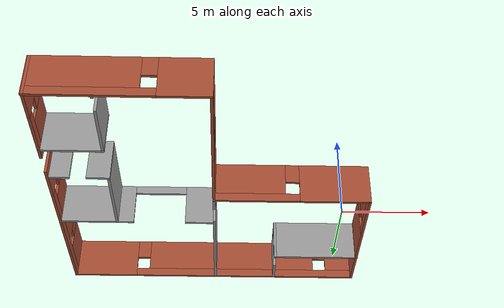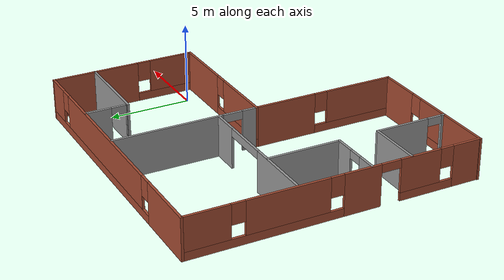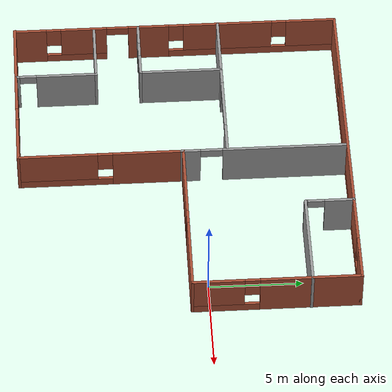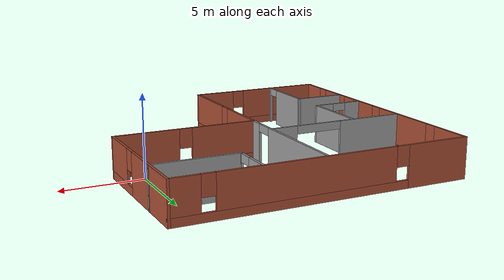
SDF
<?xml version='1.0'?>
<sdf version='1.6'>
  <model name='mybuilding'>
    <pose frame=''>-7.42419 -0.943879 0 0 -0 0</pose>
    <link name='Wall_10'>
      <pose frame=''>8.92888 4.425 0 0 0 -1.5708</pose>
      <visual name='Wall_10_Visual_0'>
        <pose frame=''>-1.80671 0 1.25 0 -0 0</pose>
        <geometry>
          <box>
            <size>5.38659 0.15 2.5</size>
          </box>
        </geometry>
        <material>
          <script>
            <uri>file://media/materials/scripts/gazebo.material</uri>
            <name>Gazebo/Bricks</name>
          </script>
          <ambient>1 1 1 1</ambient>
        </material>
        <meta>
          <layer>0</layer>
        </meta>
      </visual>
      <collision name='Wall_10_Collision_0'>
        <geometry>
          <box>
            <size>5.38659 0.15 2.5</size>
          </box>
        </geometry>
        <pose frame=''>-1.80671 0 1.25 0 -0 0</pose>
      </collision>
      <visual name='Wall_10_Visual_1'>
        <pose frame=''>2.69329 0 0.25 0 -0 0</pose>
        <geometry>
          <box>
            <size>3.61341 0.15 0.5</size>
          </box>
        </geometry>
        <material>
          <script>
            <uri>file://media/materials/scripts/gazebo.material</uri>
            <name>Gazebo/Bricks</name>
          </script>
          <ambient>1 1 1 1</ambient>
        </material>
        <meta>
          <layer>0</layer>
        </meta>
      </visual>
      <collision name='Wall_10_Collision_1'>
        <geometry>
          <box>
            <size>3.61341 0.15 0.5</size>
          </box>
        </geometry>
        <pose frame=''>2.69329 0 0.25 0 -0 0</pose>
      </collision>
      <visual name='Wall_10_Visual_2'>
        <pose frame=''>3.09329 0 1.5 0 -0 0</pose>
        <geometry>
          <box>
            <size>2.81341 0.15 2</size>
          </box>
        </geometry>
        <material>
          <script>
            <uri>file://media/materials/scripts/gazebo.material</uri>
            <name>Gazebo/Bricks</name>
          </script>
          <ambient>1 1 1 1</ambient>
        </material>
        <meta>
          <layer>0</layer>
        </meta>
      </visual>
      <collision name='Wall_10_Collision_2'>
        <geometry>
          <box>
            <size>2.81341 0.15 2</size>
          </box>
        </geometry>
        <pose frame=''>3.09329 0 1.5 0 -0 0</pose>
      </collision>
      <visual name='Wall_10_Visual_3'>
        <pose frame=''>1.28659 0 1.9 0 -0 0</pose>
        <geometry>
          <box>
            <size>0.8 0.15 1.2</size>
          </box>
        </geometry>
        <material>
          <script>
            <uri>file://media/materials/scripts/gazebo.material</uri>
            <name>Gazebo/Bricks</name>
          </script>
          <ambient>1 1 1 1</ambient>
        </material>
        <meta>
          <layer>0</layer>
        </meta>
      </visual>
      <collision name='Wall_10_Collision_3'>
        <geometry>
          <box>
            <size>0.8 0.15 1.2</size>
          </box>
        </geometry>
        <pose frame=''>1.28659 0 1.9 0 -0 0</pose>
      </collision>
    </link>
    <link name='Wall_11'>
      <pose frame=''>4.50388 0 0 0 -0 3.14159</pose>
      <visual name='Wall_11_Visual_0'>
        <pose frame=''>-2.47309 0 1.25 0 -0 0</pose>
        <geometry>
          <box>
            <size>4.05382 0.15 2.5</size>
          </box>
        </geometry>
        <material>
          <script>
            <uri>file://media/materials/scripts/gazebo.material</uri>
            <name>Gazebo/Bricks</name>
          </script>
          <ambient>1 1 1 1</ambient>
        </material>
        <meta>
          <layer>0</layer>
        </meta>
      </visual>
      <collision name='Wall_11_Collision_0'>
        <geometry>
          <box>
            <size>4.05382 0.15 2.5</size>
          </box>
        </geometry>
        <pose frame=''>-2.47309 0 1.25 0 -0 0</pose>
      </collision>
      <visual name='Wall_11_Visual_1'>
        <pose frame=''>2.02691 0 0.25 0 -0 0</pose>
        <geometry>
          <box>
            <size>4.94618 0.15 0.5</size>
          </box>
        </geometry>
        <material>
          <script>
            <uri>file://media/materials/scripts/gazebo.material</uri>
            <name>Gazebo/Bricks</name>
          </script>
          <ambient>1 1 1 1</ambient>
        </material>
        <meta>
          <layer>0</layer>
        </meta>
      </visual>
      <collision name='Wall_11_Collision_1'>
        <geometry>
          <box>
            <size>4.94618 0.15 0.5</size>
          </box>
        </geometry>
        <pose frame=''>2.02691 0 0.25 0 -0 0</pose>
      </collision>
      <visual name='Wall_11_Visual_2'>
        <pose frame=''>2.42691 0 1.5 0 -0 0</pose>
        <geometry>
          <box>
            <size>4.14618 0.15 2</size>
          </box>
        </geometry>
        <material>
          <script>
            <uri>file://media/materials/scripts/gazebo.material</uri>
            <name>Gazebo/Bricks</name>
          </script>
          <ambient>1 1 1 1</ambient>
        </material>
        <meta>
          <layer>0</layer>
        </meta>
      </visual>
      <collision name='Wall_11_Collision_2'>
        <geometry>
          <box>
            <size>4.14618 0.15 2</size>
          </box>
        </geometry>
        <pose frame=''>2.42691 0 1.5 0 -0 0</pose>
      </collision>
      <visual name='Wall_11_Visual_3'>
        <pose frame=''>-0.046178 0 1.9 0 -0 0</pose>
        <geometry>
          <box>
            <size>0.8 0.15 1.2</size>
          </box>
        </geometry>
        <material>
          <script>
            <uri>file://media/materials/scripts/gazebo.material</uri>
            <name>Gazebo/Bricks</name>
          </script>
          <ambient>1 1 1 1</ambient>
        </material>
        <meta>
          <layer>0</layer>
        </meta>
      </visual>
      <collision name='Wall_11_Collision_3'>
        <geometry>
          <box>
            <size>0.8 0.15 1.2</size>
          </box>
        </geometry>
        <pose frame=''>-0.046178 0 1.9 0 -0 0</pose>
      </collision>
    </link>
    <link name='Wall_12'>
      <pose frame=''>0.078877 -4.425 0 0 0 -1.5708</pose>
      <visual name='Wall_12_Visual_0'>
        <pose frame=''>-2.56537 0 1.25 0 -0 0</pose>
        <geometry>
          <box>
            <size>3.86926 0.15 2.5</size>
          </box>
        </geometry>
        <material>
          <script>
            <uri>file://media/materials/scripts/gazebo.material</uri>
            <name>Gazebo/Bricks</name>
          </script>
          <ambient>1 1 1 1</ambient>
        </material>
        <meta>
          <layer>0</layer>
        </meta>
      </visual>
      <collision name='Wall_12_Collision_0'>
        <geometry>
          <box>
            <size>3.86926 0.15 2.5</size>
          </box>
        </geometry>
        <pose frame=''>-2.56537 0 1.25 0 -0 0</pose>
      </collision>
      <visual name='Wall_12_Visual_1'>
        <pose frame=''>1.93463 0 0.25 0 -0 0</pose>
        <geometry>
          <box>
            <size>5.13074 0.15 0.5</size>
          </box>
        </geometry>
        <material>
          <script>
            <uri>file://media/materials/scripts/gazebo.material</uri>
            <name>Gazebo/Bricks</name>
          </script>
          <ambient>1 1 1 1</ambient>
        </material>
        <meta>
          <layer>0</layer>
        </meta>
      </visual>
      <collision name='Wall_12_Collision_1'>
        <geometry>
          <box>
            <size>5.13074 0.15 0.5</size>
          </box>
        </geometry>
        <pose frame=''>1.93463 0 0.25 0 -0 0</pose>
      </collision>
      <visual name='Wall_12_Visual_2'>
        <pose frame=''>2.33463 0 1.5 0 -0 0</pose>
        <geometry>
          <box>
            <size>4.33074 0.15 2</size>
          </box>
        </geometry>
        <material>
          <script>
            <uri>file://media/materials/scripts/gazebo.material</uri>
            <name>Gazebo/Bricks</name>
          </script>
          <ambient>1 1 1 1</ambient>
        </material>
        <meta>
          <layer>0</layer>
        </meta>
      </visual>
      <collision name='Wall_12_Collision_2'>
        <geometry>
          <box>
            <size>4.33074 0.15 2</size>
          </box>
        </geometry>
        <pose frame=''>2.33463 0 1.5 0 -0 0</pose>
      </collision>
      <visual name='Wall_12_Visual_3'>
        <pose frame=''>-0.230744 0 1.9 0 -0 0</pose>
        <geometry>
          <box>
            <size>0.8 0.15 1.2</size>
          </box>
        </geometry>
        <material>
          <script>
            <uri>file://media/materials/scripts/gazebo.material</uri>
            <name>Gazebo/Bricks</name>
          </script>
          <ambient>1 1 1 1</ambient>
        </material>
        <meta>
          <layer>0</layer>
        </meta>
      </visual>
      <collision name='Wall_12_Collision_3'>
        <geometry>
          <box>
            <size>0.8 0.15 1.2</size>
          </box>
        </geometry>
        <pose frame=''>-0.230744 0 1.9 0 -0 0</pose>
      </collision>
    </link>
    <link name='Wall_13'>
      <pose frame=''>-4.43781 -8.85 0 0 -0 3.14159</pose>
      <visual name='Wall_13_Visual_0'>
        <pose frame=''>-3.22777 0 1.25 0 -0 0</pose>
        <geometry>
          <box>
            <size>2.72783 0.15 2.5</size>
          </box>
        </geometry>
        <material>
          <script>
            <uri>file://media/materials/scripts/gazebo.material</uri>
            <name>Gazebo/Bricks</name>
          </script>
          <ambient>1 1 1 1</ambient>
        </material>
        <meta>
          <layer>0</layer>
        </meta>
      </visual>
      <collision name='Wall_13_Collision_0'>
        <geometry>
          <box>
            <size>2.72783 0.15 2.5</size>
          </box>
        </geometry>
        <pose frame=''>-3.22777 0 1.25 0 -0 0</pose>
      </collision>
      <visual name='Wall_13_Visual_1'>
        <pose frame=''>1.36392 0 0.25 0 -0 0</pose>
        <geometry>
          <box>
            <size>6.45555 0.15 0.5</size>
          </box>
        </geometry>
        <material>
          <script>
            <uri>file://media/materials/scripts/gazebo.material</uri>
            <name>Gazebo/Bricks</name>
          </script>
          <ambient>1 1 1 1</ambient>
        </material>
        <meta>
          <layer>0</layer>
        </meta>
      </visual>
      <collision name='Wall_13_Collision_1'>
        <geometry>
          <box>
            <size>6.45555 0.15 0.5</size>
          </box>
        </geometry>
        <pose frame=''>1.36392 0 0.25 0 -0 0</pose>
      </collision>
      <visual name='Wall_13_Visual_2'>
        <pose frame=''>1.76392 0 1.5 0 -0 0</pose>
        <geometry>
          <box>
            <size>5.65555 0.15 2</size>
          </box>
        </geometry>
        <material>
          <script>
            <uri>file://media/materials/scripts/gazebo.material</uri>
            <name>Gazebo/Bricks</name>
          </script>
          <ambient>1 1 1 1</ambient>
        </material>
        <meta>
          <layer>0</layer>
        </meta>
      </visual>
      <collision name='Wall_13_Collision_2'>
        <geometry>
          <box>
            <size>5.65555 0.15 2</size>
          </box>
        </geometry>
        <pose frame=''>1.76392 0 1.5 0 -0 0</pose>
      </collision>
      <visual name='Wall_13_Visual_3'>
        <pose frame=''>-1.46386 0 1.9 0 -0 0</pose>
        <geometry>
          <box>
            <size>0.8 0.15 1.2</size>
          </box>
        </geometry>
        <material>
          <script>
            <uri>file://media/materials/scripts/gazebo.material</uri>
            <name>Gazebo/Bricks</name>
          </script>
          <ambient>1 1 1 1</ambient>
        </material>
        <meta>
          <layer>0</layer>
        </meta>
      </visual>
      <collision name='Wall_13_Collision_3'>
        <geometry>
          <box>
            <size>0.8 0.15 1.2</size>
          </box>
        </geometry>
        <pose frame=''>-1.46386 0 1.9 0 -0 0</pose>
      </collision>
    </link>
    <link name='Wall_14'>
      <pose frame=''>-8.91783 -0.05 0 0 -0 1.5708</pose>
      <visual name='Wall_14_Visual_0'>
        <pose frame=''>-7.96278 0 1.25 0 -0 0</pose>
        <geometry>
          <box>
            <size>1.82444 0.15 2.5</size>
          </box>
        </geometry>
        <material>
          <script>
            <uri>file://media/materials/scripts/gazebo.material</uri>
            <name>Gazebo/Bricks</name>
          </script>
          <ambient>1 1 1 1</ambient>
        </material>
        <meta>
          <layer>0</layer>
        </meta>
      </visual>
      <collision name='Wall_14_Collision_0'>
        <geometry>
          <box>
            <size>1.82444 0.15 2.5</size>
          </box>
        </geometry>
        <pose frame=''>-7.96278 0 1.25 0 -0 0</pose>
      </collision>
      <visual name='Wall_14_Visual_1'>
        <pose frame=''>-1.40133 0 1.25 0 -0 0</pose>
        <geometry>
          <box>
            <size>2.24751 0.15 2.5</size>
          </box>
        </geometry>
        <material>
          <script>
            <uri>file://media/materials/scripts/gazebo.material</uri>
            <name>Gazebo/Bricks</name>
          </script>
          <ambient>1 1 1 1</ambient>
        </material>
        <meta>
          <layer>0</layer>
        </meta>
      </visual>
      <collision name='Wall_14_Collision_1'>
        <geometry>
          <box>
            <size>2.24751 0.15 2.5</size>
          </box>
        </geometry>
        <pose frame=''>-1.40133 0 1.25 0 -0 0</pose>
      </collision>
      <visual name='Wall_14_Visual_2'>
        <pose frame=''>-5.38782 0 0.25 0 -0 0</pose>
        <geometry>
          <box>
            <size>3.32548 0.15 0.5</size>
          </box>
        </geometry>
        <material>
          <script>
            <uri>file://media/materials/scripts/gazebo.material</uri>
            <name>Gazebo/Bricks</name>
          </script>
          <ambient>1 1 1 1</ambient>
        </material>
        <meta>
          <layer>0</layer>
        </meta>
      </visual>
      <collision name='Wall_14_Collision_2'>
        <geometry>
          <box>
            <size>3.32548 0.15 0.5</size>
          </box>
        </geometry>
        <pose frame=''>-5.38782 0 0.25 0 -0 0</pose>
      </collision>
      <visual name='Wall_14_Visual_3'>
        <pose frame=''>4.29871 0 0.25 0 -0 0</pose>
        <geometry>
          <box>
            <size>9.15257 0.15 0.5</size>
          </box>
        </geometry>
        <material>
          <script>
            <uri>file://media/materials/scripts/gazebo.material</uri>
            <name>Gazebo/Bricks</name>
          </script>
          <ambient>1 1 1 1</ambient>
        </material>
        <meta>
          <layer>0</layer>
        </meta>
      </visual>
      <collision name='Wall_14_Collision_3'>
        <geometry>
          <box>
            <size>9.15257 0.15 0.5</size>
          </box>
        </geometry>
        <pose frame=''>4.29871 0 0.25 0 -0 0</pose>
      </collision>
      <visual name='Wall_14_Visual_4'>
        <pose frame=''>-4.98782 0 1.5 0 -0 0</pose>
        <geometry>
          <box>
            <size>2.52548 0.15 2</size>
          </box>
        </geometry>
        <material>
          <script>
            <uri>file://media/materials/scripts/gazebo.material</uri>
            <name>Gazebo/Bricks</name>
          </script>
          <ambient>1 1 1 1</ambient>
        </material>
        <meta>
          <layer>0</layer>
        </meta>
      </visual>
      <collision name='Wall_14_Collision_4'>
        <geometry>
          <box>
            <size>2.52548 0.15 2</size>
          </box>
        </geometry>
        <pose frame=''>-4.98782 0 1.5 0 -0 0</pose>
      </collision>
      <visual name='Wall_14_Visual_5'>
        <pose frame=''>-4.98782 0 1.5 0 -0 0</pose>
        <geometry>
          <box>
            <size>2.52548 0.15 2</size>
          </box>
        </geometry>
        <material>
          <script>
            <uri>file://media/materials/scripts/gazebo.material</uri>
            <name>Gazebo/Bricks</name>
          </script>
          <ambient>1 1 1 1</ambient>
        </material>
        <meta>
          <layer>0</layer>
        </meta>
      </visual>
      <collision name='Wall_14_Collision_5'>
        <geometry>
          <box>
            <size>2.52548 0.15 2</size>
          </box>
        </geometry>
        <pose frame=''>-4.98782 0 1.5 0 -0 0</pose>
      </collision>
      <visual name='Wall_14_Visual_6'>
        <pose frame=''>2.97185 0 1.5 0 -0 0</pose>
        <geometry>
          <box>
            <size>4.89886 0.15 2</size>
          </box>
        </geometry>
        <material>
          <script>
            <uri>file://media/materials/scripts/gazebo.material</uri>
            <name>Gazebo/Bricks</name>
          </script>
          <ambient>1 1 1 1</ambient>
        </material>
        <meta>
          <layer>0</layer>
        </meta>
      </visual>
      <collision name='Wall_14_Collision_6'>
        <geometry>
          <box>
            <size>4.89886 0.15 2</size>
          </box>
        </geometry>
        <pose frame=''>2.97185 0 1.5 0 -0 0</pose>
      </collision>
      <visual name='Wall_14_Visual_7'>
        <pose frame=''>7.54814 0 1.5 0 -0 0</pose>
        <geometry>
          <box>
            <size>2.65372 0.15 2</size>
          </box>
        </geometry>
        <material>
          <script>
            <uri>file://media/materials/scripts/gazebo.material</uri>
            <name>Gazebo/Bricks</name>
          </script>
          <ambient>1 1 1 1</ambient>
        </material>
        <meta>
          <layer>0</layer>
        </meta>
      </visual>
      <collision name='Wall_14_Collision_7'>
        <geometry>
          <box>
            <size>2.65372 0.15 2</size>
          </box>
        </geometry>
        <pose frame=''>7.54814 0 1.5 0 -0 0</pose>
      </collision>
      <visual name='Wall_14_Visual_8'>
        <pose frame=''>-6.65056 0 1.9 0 -0 0</pose>
        <geometry>
          <box>
            <size>0.8 0.15 1.2</size>
          </box>
        </geometry>
        <material>
          <script>
            <uri>file://media/materials/scripts/gazebo.material</uri>
            <name>Gazebo/Bricks</name>
          </script>
          <ambient>1 1 1 1</ambient>
        </material>
        <meta>
          <layer>0</layer>
        </meta>
      </visual>
      <collision name='Wall_14_Collision_8'>
        <geometry>
          <box>
            <size>0.8 0.15 1.2</size>
          </box>
        </geometry>
        <pose frame=''>-6.65056 0 1.9 0 -0 0</pose>
      </collision>
      <visual name='Wall_14_Visual_9'>
        <pose frame=''>0.122426 0 1.9 0 -0 0</pose>
        <geometry>
          <box>
            <size>0.8 0.15 1.2</size>
          </box>
        </geometry>
        <material>
          <script>
            <uri>file://media/materials/scripts/gazebo.material</uri>
            <name>Gazebo/Bricks</name>
          </script>
          <ambient>1 1 1 1</ambient>
        </material>
        <meta>
          <layer>0</layer>
        </meta>
      </visual>
      <collision name='Wall_14_Collision_9'>
        <geometry>
          <box>
            <size>0.8 0.15 1.2</size>
          </box>
        </geometry>
        <pose frame=''>0.122426 0 1.9 0 -0 0</pose>
      </collision>
      <visual name='Wall_14_Visual_10'>
        <pose frame=''>5.82128 0 1.9 0 -0 0</pose>
        <geometry>
          <box>
            <size>0.8 0.15 1.2</size>
          </box>
        </geometry>
        <material>
          <script>
            <uri>file://media/materials/scripts/gazebo.material</uri>
            <name>Gazebo/Bricks</name>
          </script>
          <ambient>1 1 1 1</ambient>
        </material>
        <meta>
          <layer>0</layer>
        </meta>
      </visual>
      <collision name='Wall_14_Collision_10'>
        <geometry>
          <box>
            <size>0.8 0.15 1.2</size>
          </box>
        </geometry>
        <pose frame=''>5.82128 0 1.9 0 -0 0</pose>
      </collision>
      <visual name='Wall_14_Visual_11'>
        <pose frame=''>-3.12508 0 2.25 0 -0 0</pose>
        <geometry>
          <box>
            <size>1.2 0.15 0.5</size>
          </box>
        </geometry>
        <material>
          <script>
            <uri>file://media/materials/scripts/gazebo.material</uri>
            <name>Gazebo/Bricks</name>
          </script>
          <ambient>1 1 1 1</ambient>
        </material>
        <meta>
          <layer>0</layer>
        </meta>
      </visual>
      <collision name='Wall_14_Collision_11'>
        <geometry>
          <box>
            <size>1.2 0.15 0.5</size>
          </box>
        </geometry>
        <pose frame=''>-3.12508 0 2.25 0 -0 0</pose>
      </collision>
      <visual name='Wall_14_Visual_12'>
        <pose frame=''>-3.12508 0 2.25 0 -0 0</pose>
        <geometry>
          <box>
            <size>1.2 0.15 0.5</size>
          </box>
        </geometry>
        <material>
          <script>
            <uri>file://media/materials/scripts/gazebo.material</uri>
            <name>Gazebo/Bricks</name>
          </script>
          <ambient>1 1 1 1</ambient>
        </material>
        <meta>
          <layer>0</layer>
        </meta>
      </visual>
      <collision name='Wall_14_Collision_12'>
        <geometry>
          <box>
            <size>1.2 0.15 0.5</size>
          </box>
        </geometry>
        <pose frame=''>-3.12508 0 2.25 0 -0 0</pose>
      </collision>
    </link>
    <link name='Wall_16'>
      <pose frame=''>0.080726 4.34148 0 0 0 -1.5708</pose>
      <visual name='Wall_16_Visual_0'>
        <pose frame=''>-1.13955 0 1.25 0 -0 0</pose>
        <geometry>
          <box>
            <size>6.7209 0.15 2.5</size>
          </box>
        </geometry>
        <material>
          <script>
            <uri>file://media/materials/scripts/gazebo.material</uri>
            <name>Gazebo/Grey</name>
          </script>
          <ambient>1 1 1 1</ambient>
        </material>
        <meta>
          <layer>0</layer>
        </meta>
      </visual>
      <collision name='Wall_16_Collision_0'>
        <geometry>
          <box>
            <size>6.7209 0.15 2.5</size>
          </box>
        </geometry>
        <pose frame=''>-1.13955 0 1.25 0 -0 0</pose>
      </collision>
      <visual name='Wall_16_Visual_1'>
        <pose frame=''>3.96045 0 1.25 0 -0 0</pose>
        <geometry>
          <box>
            <size>1.0791 0.15 2.5</size>
          </box>
        </geometry>
        <material>
          <script>
            <uri>file://media/materials/scripts/gazebo.material</uri>
            <name>Gazebo/Grey</name>
          </script>
          <ambient>1 1 1 1</ambient>
        </material>
        <meta>
          <layer>0</layer>
        </meta>
      </visual>
      <collision name='Wall_16_Collision_1'>
        <geometry>
          <box>
            <size>1.0791 0.15 2.5</size>
          </box>
        </geometry>
        <pose frame=''>3.96045 0 1.25 0 -0 0</pose>
      </collision>
      <visual name='Wall_16_Visual_2'>
        <pose frame=''>2.8209 0 2.25 0 -0 0</pose>
        <geometry>
          <box>
            <size>1.2 0.15 0.5</size>
          </box>
        </geometry>
        <material>
          <script>
            <uri>file://media/materials/scripts/gazebo.material</uri>
            <name>Gazebo/Grey</name>
          </script>
          <ambient>1 1 1 1</ambient>
        </material>
        <meta>
          <layer>0</layer>
        </meta>
      </visual>
      <collision name='Wall_16_Collision_2'>
        <geometry>
          <box>
            <size>1.2 0.15 0.5</size>
          </box>
        </geometry>
        <pose frame=''>2.8209 0 2.25 0 -0 0</pose>
      </collision>
    </link>
    <link name='Wall_18'>
      <pose frame=''>-4.44721 2.3705 0 0 -0 0</pose>
      <visual name='Wall_18_Visual_0'>
        <pose frame=''>-2.34217 0 1.25 0 -0 0</pose>
        <geometry>
          <box>
            <size>4.31566 0.15 2.5</size>
          </box>
        </geometry>
        <material>
          <script>
            <uri>file://media/materials/scripts/gazebo.material</uri>
            <name>Gazebo/Grey</name>
          </script>
          <ambient>1 1 1 1</ambient>
        </material>
        <meta>
          <layer>0</layer>
        </meta>
      </visual>
      <collision name='Wall_18_Collision_0'>
        <geometry>
          <box>
            <size>4.31566 0.15 2.5</size>
          </box>
        </geometry>
        <pose frame=''>-2.34217 0 1.25 0 -0 0</pose>
      </collision>
      <visual name='Wall_18_Visual_1'>
        <pose frame=''>3.65783 0 1.25 0 -0 0</pose>
        <geometry>
          <box>
            <size>1.68434 0.15 2.5</size>
          </box>
        </geometry>
        <material>
          <script>
            <uri>file://media/materials/scripts/gazebo.material</uri>
            <name>Gazebo/Grey</name>
          </script>
          <ambient>1 1 1 1</ambient>
        </material>
        <meta>
          <layer>0</layer>
        </meta>
      </visual>
      <collision name='Wall_18_Collision_1'>
        <geometry>
          <box>
            <size>1.68434 0.15 2.5</size>
          </box>
        </geometry>
        <pose frame=''>3.65783 0 1.25 0 -0 0</pose>
      </collision>
      <visual name='Wall_18_Visual_2'>
        <pose frame=''>1.31566 0 2.25 0 -0 0</pose>
        <geometry>
          <box>
            <size>3 0.15 0.5</size>
          </box>
        </geometry>
        <material>
          <script>
            <uri>file://media/materials/scripts/gazebo.material</uri>
            <name>Gazebo/Grey</name>
          </script>
          <ambient>1 1 1 1</ambient>
        </material>
        <meta>
          <layer>0</layer>
        </meta>
      </visual>
      <collision name='Wall_18_Collision_2'>
        <geometry>
          <box>
            <size>3 0.15 0.5</size>
          </box>
        </geometry>
        <pose frame=''>1.31566 0 2.25 0 -0 0</pose>
      </collision>
    </link>
    <link name='Wall_20'>
      <collision name='Wall_20_Collision'>
        <geometry>
          <box>
            <size>4.5 0.15 2.5</size>
          </box>
        </geometry>
        <pose frame=''>0 0 1.25 0 -0 0</pose>
      </collision>
      <visual name='Wall_20_Visual'>
        <pose frame=''>0 0 1.25 0 -0 0</pose>
        <geometry>
          <box>
            <size>4.5 0.15 2.5</size>
          </box>
        </geometry>
        <material>
          <script>
            <uri>file://media/materials/scripts/gazebo.material</uri>
            <name>Gazebo/Grey</name>
          </script>
          <ambient>1 1 1 1</ambient>
        </material>
        <meta>
          <layer>0</layer>
        </meta>
      </visual>
      <pose frame=''>-5.59981 0.139879 0 0 0 -1.5708</pose>
    </link>
    <link name='Wall_21'>
      <pose frame=''>-7.22481 -2.03512 0 0 -0 3.14159</pose>
      <visual name='Wall_21_Visual_0'>
        <pose frame=''>-1.05244 0 1.25 0 -0 0</pose>
        <geometry>
          <box>
            <size>1.29513 0.15 2.5</size>
          </box>
        </geometry>
        <material>
          <script>
            <uri>file://media/materials/scripts/gazebo.material</uri>
            <name>Gazebo/Grey</name>
          </script>
          <ambient>1 1 1 1</ambient>
        </material>
        <meta>
          <layer>0</layer>
        </meta>
      </visual>
      <collision name='Wall_21_Collision_0'>
        <geometry>
          <box>
            <size>1.29513 0.15 2.5</size>
          </box>
        </geometry>
        <pose frame=''>-1.05244 0 1.25 0 -0 0</pose>
      </collision>
      <visual name='Wall_21_Visual_1'>
        <pose frame=''>1.09756 0 1.25 0 -0 0</pose>
        <geometry>
          <box>
            <size>1.20487 0.15 2.5</size>
          </box>
        </geometry>
        <material>
          <script>
            <uri>file://media/materials/scripts/gazebo.material</uri>
            <name>Gazebo/Grey</name>
          </script>
          <ambient>1 1 1 1</ambient>
        </material>
        <meta>
          <layer>0</layer>
        </meta>
      </visual>
      <collision name='Wall_21_Collision_1'>
        <geometry>
          <box>
            <size>1.20487 0.15 2.5</size>
          </box>
        </geometry>
        <pose frame=''>1.09756 0 1.25 0 -0 0</pose>
      </collision>
      <visual name='Wall_21_Visual_2'>
        <pose frame=''>0.045131 0 2.25 0 -0 0</pose>
        <geometry>
          <box>
            <size>0.9 0.15 0.5</size>
          </box>
        </geometry>
        <material>
          <script>
            <uri>file://media/materials/scripts/gazebo.material</uri>
            <name>Gazebo/Grey</name>
          </script>
          <ambient>1 1 1 1</ambient>
        </material>
        <meta>
          <layer>0</layer>
        </meta>
      </visual>
      <collision name='Wall_21_Collision_2'>
        <geometry>
          <box>
            <size>0.9 0.15 0.5</size>
          </box>
        </geometry>
        <pose frame=''>0.045131 0 2.25 0 -0 0</pose>
      </collision>
    </link>
    <link name='Wall_23'>
      <pose frame=''>-5.61281 -6.64612 0 0 -0 1.5708</pose>
      <visual name='Wall_23_Visual_0'>
        <pose frame=''>-2.12015 0 1.25 0 -0 0</pose>
        <geometry>
          <box>
            <size>0.259702 0.15 2.5</size>
          </box>
        </geometry>
        <material>
          <script>
            <uri>file://media/materials/scripts/gazebo.material</uri>
            <name>Gazebo/Grey</name>
          </script>
          <ambient>1 1 1 1</ambient>
        </material>
        <meta>
          <layer>0</layer>
        </meta>
      </visual>
      <collision name='Wall_23_Collision_0'>
        <geometry>
          <box>
            <size>0.259702 0.15 2.5</size>
          </box>
        </geometry>
        <pose frame=''>-2.12015 0 1.25 0 -0 0</pose>
      </collision>
      <visual name='Wall_23_Visual_1'>
        <pose frame=''>0.579851 0 1.25 0 -0 0</pose>
        <geometry>
          <box>
            <size>3.3403 0.15 2.5</size>
          </box>
        </geometry>
        <material>
          <script>
            <uri>file://media/materials/scripts/gazebo.material</uri>
            <name>Gazebo/Grey</name>
          </script>
          <ambient>1 1 1 1</ambient>
        </material>
        <meta>
          <layer>0</layer>
        </meta>
      </visual>
      <collision name='Wall_23_Collision_1'>
        <geometry>
          <box>
            <size>3.3403 0.15 2.5</size>
          </box>
        </geometry>
        <pose frame=''>0.579851 0 1.25 0 -0 0</pose>
      </collision>
      <visual name='Wall_23_Visual_2'>
        <pose frame=''>-1.5403 0 2.25 0 -0 0</pose>
        <geometry>
          <box>
            <size>0.9 0.15 0.5</size>
          </box>
        </geometry>
        <material>
          <script>
            <uri>file://media/materials/scripts/gazebo.material</uri>
            <name>Gazebo/Grey</name>
          </script>
          <ambient>1 1 1 1</ambient>
        </material>
        <meta>
          <layer>0</layer>
        </meta>
      </visual>
      <collision name='Wall_23_Collision_2'>
        <geometry>
          <box>
            <size>0.9 0.15 0.5</size>
          </box>
        </geometry>
        <pose frame=''>-1.5403 0 2.25 0 -0 0</pose>
      </collision>
    </link>
    <link name='Wall_24'>
      <collision name='Wall_24_Collision'>
        <geometry>
          <box>
            <size>3.4 0.15 2.5</size>
          </box>
        </geometry>
        <pose frame=''>0 0 1.25 0 -0 0</pose>
      </collision>
      <visual name='Wall_24_Visual'>
        <pose frame=''>0 0 1.25 0 -0 0</pose>
        <geometry>
          <box>
            <size>3.4 0.15 2.5</size>
          </box>
        </geometry>
        <material>
          <script>
            <uri>file://media/materials/scripts/gazebo.material</uri>
            <name>Gazebo/Grey</name>
          </script>
          <ambient>1 1 1 1</ambient>
        </material>
        <meta>
          <layer>0</layer>
        </meta>
      </visual>
      <pose frame=''>-7.23781 -4.47112 0 0 -0 3.14159</pose>
    </link>
    <link name='Wall_43'>
      <collision name='Wall_43_Collision'>
        <geometry>
          <box>
            <size>5.25 0.15 2.5</size>
          </box>
        </geometry>
        <pose frame=''>0 0 1.25 0 -0 0</pose>
      </collision>
      <visual name='Wall_43_Visual'>
        <pose frame=''>0 0 1.25 0 -0 0</pose>
        <geometry>
          <box>
            <size>5.25 0.15 2.5</size>
          </box>
        </geometry>
        <material>
          <script>
            <uri>file://media/materials/scripts/gazebo.material</uri>
            <name>Gazebo/Grey</name>
          </script>
          <ambient>1 1 1 1</ambient>
        </material>
        <meta>
          <layer>0</layer>
        </meta>
      </visual>
      <pose frame=''>6.4045 6.27481 0 0 -0 3.14159</pose>
    </link>
    <link name='Wall_44'>
      <pose frame=''>3.8545 7.54981 0 0 -0 1.5708</pose>
      <visual name='Wall_44_Visual_0'>
        <pose frame=''>-1.25121 0 1.25 0 -0 0</pose>
        <geometry>
          <box>
            <size>0.19758 0.15 2.5</size>
          </box>
        </geometry>
        <material>
          <script>
            <uri>file://media/materials/scripts/gazebo.material</uri>
            <name>Gazebo/Grey</name>
          </script>
          <ambient>1 1 1 1</ambient>
        </material>
        <meta>
          <layer>0</layer>
        </meta>
      </visual>
      <collision name='Wall_44_Collision_0'>
        <geometry>
          <box>
            <size>0.19758 0.15 2.5</size>
          </box>
        </geometry>
        <pose frame=''>-1.25121 0 1.25 0 -0 0</pose>
      </collision>
      <visual name='Wall_44_Visual_1'>
        <pose frame=''>0.54879 0 1.25 0 -0 0</pose>
        <geometry>
          <box>
            <size>1.60242 0.15 2.5</size>
          </box>
        </geometry>
        <material>
          <script>
            <uri>file://media/materials/scripts/gazebo.material</uri>
            <name>Gazebo/Grey</name>
          </script>
          <ambient>1 1 1 1</ambient>
        </material>
        <meta>
          <layer>0</layer>
        </meta>
      </visual>
      <collision name='Wall_44_Collision_1'>
        <geometry>
          <box>
            <size>1.60242 0.15 2.5</size>
          </box>
        </geometry>
        <pose frame=''>0.54879 0 1.25 0 -0 0</pose>
      </collision>
      <visual name='Wall_44_Visual_2'>
        <pose frame=''>-0.70242 0 2.25 0 -0 0</pose>
        <geometry>
          <box>
            <size>0.9 0.15 0.5</size>
          </box>
        </geometry>
        <material>
          <script>
            <uri>file://media/materials/scripts/gazebo.material</uri>
            <name>Gazebo/Grey</name>
          </script>
          <ambient>1 1 1 1</ambient>
        </material>
        <meta>
          <layer>0</layer>
        </meta>
      </visual>
      <collision name='Wall_44_Collision_2'>
        <geometry>
          <box>
            <size>0.9 0.15 0.5</size>
          </box>
        </geometry>
        <pose frame=''>-0.70242 0 2.25 0 -0 0</pose>
      </collision>
    </link>
    <link name='Wall_9'>
      <pose frame=''>0.003877 8.85 0 0 -0 0</pose>
      <visual name='Wall_9_Visual_0'>
        <pose frame=''>-7.00943 0 1.25 0 -0 0</pose>
        <geometry>
          <box>
            <size>3.98114 0.15 2.5</size>
          </box>
        </geometry>
        <material>
          <script>
            <uri>file://media/materials/scripts/gazebo.material</uri>
            <name>Gazebo/Bricks</name>
          </script>
          <ambient>1 1 1 1</ambient>
        </material>
        <meta>
          <layer>0</layer>
        </meta>
      </visual>
      <collision name='Wall_9_Collision_0'>
        <geometry>
          <box>
            <size>3.98114 0.15 2.5</size>
          </box>
        </geometry>
        <pose frame=''>-7.00943 0 1.25 0 -0 0</pose>
      </collision>
      <visual name='Wall_9_Visual_1'>
        <pose frame=''>1.99057 0 0.25 0 -0 0</pose>
        <geometry>
          <box>
            <size>14.0189 0.15 0.5</size>
          </box>
        </geometry>
        <material>
          <script>
            <uri>file://media/materials/scripts/gazebo.material</uri>
            <name>Gazebo/Bricks</name>
          </script>
          <ambient>1 1 1 1</ambient>
        </material>
        <meta>
          <layer>0</layer>
        </meta>
      </visual>
      <collision name='Wall_9_Collision_1'>
        <geometry>
          <box>
            <size>14.0189 0.15 0.5</size>
          </box>
        </geometry>
        <pose frame=''>1.99057 0 0.25 0 -0 0</pose>
      </collision>
      <visual name='Wall_9_Visual_2'>
        <pose frame=''>1.11186 0 1.5 0 -0 0</pose>
        <geometry>
          <box>
            <size>10.6614 0.15 2</size>
          </box>
        </geometry>
        <material>
          <script>
            <uri>file://media/materials/scripts/gazebo.material</uri>
            <name>Gazebo/Bricks</name>
          </script>
          <ambient>1 1 1 1</ambient>
        </material>
        <meta>
          <layer>0</layer>
        </meta>
      </visual>
      <collision name='Wall_9_Collision_2'>
        <geometry>
          <box>
            <size>10.6614 0.15 2</size>
          </box>
        </geometry>
        <pose frame=''>1.11186 0 1.5 0 -0 0</pose>
      </collision>
      <visual name='Wall_9_Visual_3'>
        <pose frame=''>8.12129 0 1.5 0 -0 0</pose>
        <geometry>
          <box>
            <size>1.75742 0.15 2</size>
          </box>
        </geometry>
        <material>
          <script>
            <uri>file://media/materials/scripts/gazebo.material</uri>
            <name>Gazebo/Bricks</name>
          </script>
          <ambient>1 1 1 1</ambient>
        </material>
        <meta>
          <layer>0</layer>
        </meta>
      </visual>
      <collision name='Wall_9_Collision_3'>
        <geometry>
          <box>
            <size>1.75742 0.15 2</size>
          </box>
        </geometry>
        <pose frame=''>8.12129 0 1.5 0 -0 0</pose>
      </collision>
      <visual name='Wall_9_Visual_4'>
        <pose frame=''>-4.61886 0 1.9 0 -0 0</pose>
        <geometry>
          <box>
            <size>0.8 0.15 1.2</size>
          </box>
        </geometry>
        <material>
          <script>
            <uri>file://media/materials/scripts/gazebo.material</uri>
            <name>Gazebo/Bricks</name>
          </script>
          <ambient>1 1 1 1</ambient>
        </material>
        <meta>
          <layer>0</layer>
        </meta>
      </visual>
      <collision name='Wall_9_Collision_4'>
        <geometry>
          <box>
            <size>0.8 0.15 1.2</size>
          </box>
        </geometry>
        <pose frame=''>-4.61886 0 1.9 0 -0 0</pose>
      </collision>
      <visual name='Wall_9_Visual_5'>
        <pose frame=''>6.84258 0 1.9 0 -0 0</pose>
        <geometry>
          <box>
            <size>0.8 0.15 1.2</size>
          </box>
        </geometry>
        <material>
          <script>
            <uri>file://media/materials/scripts/gazebo.material</uri>
            <name>Gazebo/Bricks</name>
          </script>
          <ambient>1 1 1 1</ambient>
        </material>
        <meta>
          <layer>0</layer>
        </meta>
      </visual>
      <collision name='Wall_9_Collision_5'>
        <geometry>
          <box>
            <size>0.8 0.15 1.2</size>
          </box>
        </geometry>
        <pose frame=''>6.84258 0 1.9 0 -0 0</pose>
      </collision>
    </link>
    <static>1</static>
  </model>
</sdf>
